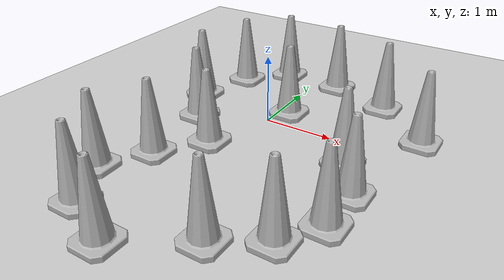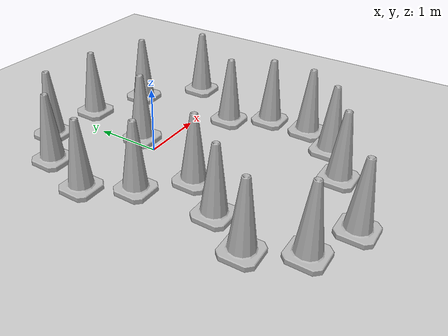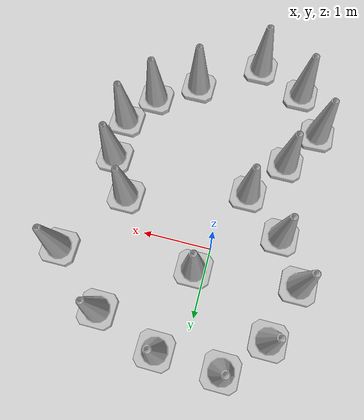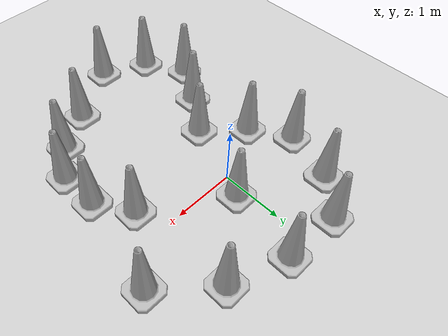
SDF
<sdf version="1.7">
 <world name="default">
  <light name="sun" type="directional">
   <pose>0 0 10 0 -0 0</pose>
   <diffuse>0.8 0.8 0.8 1</diffuse>
   <specular>0.2 0.2 0.2 1</specular>
   <attenuation>
    <range>1000</range>
    <constant>0.9</constant>
    <linear>0.01</linear>
    <quadratic>0.001</quadratic>
   </attenuation>
   <direction>-0.5 0.1 -0.9</direction>
   <spot><inner_angle>0</inner_angle><outer_angle>0</outer_angle><falloff>0</falloff></spot>
  </light>
  <model name="ground_plane">
   <static>1</static>
   <link name="link">
    <collision name="collision">
     <geometry><plane><normal>0 0 1</normal><size>100 100</size></plane></geometry>
     <surface>
      <contact><collide_bitmask>65535</collide_bitmask></contact>
      <friction><ode><mu>100</mu><mu2>50</mu2></ode></friction>
     </surface>
    </collision>
    <visual name="visual">
     <cast_shadows>0</cast_shadows>
     <geometry><plane><normal>0 0 1</normal><size>100 100</size></plane></geometry>
     <material>
      <script><uri>file://media/materials/scripts/gazebo.material</uri><name>Gazebo/Grey</name></script>
     </material>
    </visual>
   </link>
  </model>
  <gravity>0 0 -9.8</gravity>
  <magnetic_field>6e-06 2.3e-05 -4.2e-05</magnetic_field>
  <atmosphere type="adiabatic"/>
  <physics type="ode">
   <max_step_size>0.001</max_step_size>
   <real_time_factor>1</real_time_factor>
   <real_time_update_rate>1000</real_time_update_rate>
  </physics>
  <scene><ambient>0.4 0.4 0.4 1</ambient><background>0.7 0.7 0.7 1</background><shadows>1</shadows></scene>
  <spherical_coordinates>
   <surface_model>EARTH_WGS84</surface_model>
   <latitude_deg>0</latitude_deg>
   <longitude_deg>0</longitude_deg>
   <elevation>0</elevation>
   <heading_deg>0</heading_deg>
  </spherical_coordinates>
  <model name="Construction Cone">
   <link name="link">
    <collision name="collision">
     <geometry>
      <mesh><scale>10 10 10</scale><uri>model://construction_cone/meshes/construction_cone.dae</uri></mesh>
     </geometry>
    </collision>
    <visual name="visual">
     <geometry>
      <mesh><scale>10 10 10</scale><uri>model://construction_cone/meshes/construction_cone.dae</uri></mesh>
     </geometry>
    </visual>
    <inertial>
     <inertia><ixx>1</ixx><ixy>0</ixy><ixz>0</ixz><iyy>1</iyy><iyz>0</iyz><izz>1</izz></inertia>
     <mass>1</mass>
    </inertial>
   </link>
   <pose>-0.348892 -0.953407 -0 0 -1e-06 0</pose>
  </model>
  <model name="Construction Cone_clone">
   <link name="link">
    <collision name="collision">
     <geometry>
      <mesh><scale>10 10 10</scale><uri>model://construction_cone/meshes/construction_cone.dae</uri></mesh>
     </geometry>
    </collision>
    <visual name="visual">
     <geometry>
      <mesh><scale>10 10 10</scale><uri>model://construction_cone/meshes/construction_cone.dae</uri></mesh>
     </geometry>
    </visual>
    <inertial>
     <inertia><ixx>1</ixx><ixy>0</ixy><ixz>0</ixz><iyy>1</iyy><iyz>0</iyz><izz>1</izz></inertia>
     <mass>1</mass>
    </inertial>
   </link>
   <pose>1.78123 -1.69997 -0 0 0 -0.004098</pose>
  </model>
  <model name="Construction Cone_clone_clone">
   <link name="link">
    <collision name="collision">
     <geometry>
      <mesh><scale>10 10 10</scale><uri>model://construction_cone/meshes/construction_cone.dae</uri></mesh>
     </geometry>
    </collision>
    <visual name="visual">
     <geometry>
      <mesh><scale>10 10 10</scale><uri>model://construction_cone/meshes/construction_cone.dae</uri></mesh>
     </geometry>
    </visual>
    <inertial>
     <inertia><ixx>1</ixx><ixy>0</ixy><ixz>0</ixz><iyy>1</iyy><iyz>0</iyz><izz>1</izz></inertia>
     <mass>1</mass>
    </inertial>
   </link>
   <pose>0.822544 -2.58039 -0 1e-06 1e-06 0</pose>
  </model>
  <model name="Construction Cone_clone_clone_0">
   <link name="link">
    <collision name="collision">
     <geometry>
      <mesh><scale>10 10 10</scale><uri>model://construction_cone/meshes/construction_cone.dae</uri></mesh>
     </geometry>
    </collision>
    <visual name="visual">
     <geometry>
      <mesh><scale>10 10 10</scale><uri>model://construction_cone/meshes/construction_cone.dae</uri></mesh>
     </geometry>
    </visual>
    <inertial>
     <inertia><ixx>1</ixx><ixy>0</ixy><ixz>0</ixz><iyy>1</iyy><iyz>0</iyz><izz>1</izz></inertia>
     <mass>1</mass>
    </inertial>
   </link>
   <pose>0.161835 0.345818 0 -0 -0 -0</pose>
  </model>
  <model name="Construction Cone_clone_clone_1">
   <link name="link">
    <collision name="collision">
     <geometry>
      <mesh><scale>10 10 10</scale><uri>model://construction_cone/meshes/construction_cone.dae</uri></mesh>
     </geometry>
    </collision>
    <visual name="visual">
     <geometry>
      <mesh><scale>10 10 10</scale><uri>model://construction_cone/meshes/construction_cone.dae</uri></mesh>
     </geometry>
    </visual>
    <inertial>
     <inertia><ixx>1</ixx><ixy>0</ixy><ixz>0</ixz><iyy>1</iyy><iyz>0</iyz><izz>1</izz></inertia>
     <mass>1</mass>
    </inertial>
   </link>
   <pose>-0.804428 -1.56467 0 -0 -0 -0</pose>
  </model>
  <model name="Construction Cone_clone_clone_2">
   <link name="link">
    <collision name="collision">
     <geometry>
      <mesh><scale>10 10 10</scale><uri>model://construction_cone/meshes/construction_cone.dae</uri></mesh>
     </geometry>
    </collision>
    <visual name="visual">
     <geometry>
      <mesh><scale>10 10 10</scale><uri>model://construction_cone/meshes/construction_cone.dae</uri></mesh>
     </geometry>
    </visual>
    <inertial>
     <inertia><ixx>1</ixx><ixy>0</ixy><ixz>0</ixz><iyy>1</iyy><iyz>0</iyz><izz>1</izz></inertia>
     <mass>1</mass>
    </inertial>
   </link>
   <pose>-0.096346 -3.16498 -0 0 -1e-06 0</pose>
  </model>
  <model name="Construction Cone_clone_clone_3">
   <link name="link">
    <collision name="collision">
     <geometry>
      <mesh><scale>10 10 10</scale><uri>model://construction_cone/meshes/construction_cone.dae</uri></mesh>
     </geometry>
    </collision>
    <visual name="visual">
     <geometry>
      <mesh><scale>10 10 10</scale><uri>model://construction_cone/meshes/construction_cone.dae</uri></mesh>
     </geometry>
    </visual>
    <inertial>
     <inertia><ixx>1</ixx><ixy>0</ixy><ixz>0</ixz><iyy>1</iyy><iyz>0</iyz><izz>1</izz></inertia>
     <mass>1</mass>
    </inertial>
   </link>
   <pose>-0.821774 -2.83436 -0 0 -0 0</pose>
  </model>
  <model name="Construction Cone_clone_clone_4">
   <link name="link">
    <collision name="collision">
     <geometry>
      <mesh><scale>10 10 10</scale><uri>model://construction_cone/meshes/construction_cone.dae</uri></mesh>
     </geometry>
    </collision>
    <visual name="visual">
     <geometry>
      <mesh><scale>10 10 10</scale><uri>model://construction_cone/meshes/construction_cone.dae</uri></mesh>
     </geometry>
    </visual>
    <inertial>
     <inertia><ixx>1</ixx><ixy>0</ixy><ixz>0</ixz><iyy>1</iyy><iyz>0</iyz><izz>1</izz></inertia>
     <mass>1</mass>
    </inertial>
   </link>
   <pose>-1.19502 -2.18151 -0 -0 -1e-06 0.031817</pose>
  </model>
  <model name="Construction Cone_clone_clone_5">
   <link name="link">
    <collision name="collision">
     <geometry>
      <mesh><scale>10 10 10</scale><uri>model://construction_cone/meshes/construction_cone.dae</uri></mesh>
     </geometry>
    </collision>
    <visual name="visual">
     <geometry>
      <mesh><scale>10 10 10</scale><uri>model://construction_cone/meshes/construction_cone.dae</uri></mesh>
     </geometry>
    </visual>
    <inertial>
     <inertia><ixx>1</ixx><ixy>0</ixy><ixz>0</ixz><iyy>1</iyy><iyz>0</iyz><izz>1</izz></inertia>
     <mass>1</mass>
    </inertial>
   </link>
   <pose>1.43694 -2.19958 -0 0 0 -0.000385</pose>
  </model>
  <model name="Construction Cone_clone_clone_6">
   <link name="link">
    <collision name="collision">
     <geometry>
      <mesh><scale>10 10 10</scale><uri>model://construction_cone/meshes/construction_cone.dae</uri></mesh>
     </geometry>
    </collision>
    <visual name="visual">
     <geometry>
      <mesh><scale>10 10 10</scale><uri>model://construction_cone/meshes/construction_cone.dae</uri></mesh>
     </geometry>
    </visual>
    <inertial>
     <inertia><ixx>1</ixx><ixy>0</ixy><ixz>0</ixz><iyy>1</iyy><iyz>0</iyz><izz>1</izz></inertia>
     <mass>1</mass>
    </inertial>
   </link>
   <pose>1.7774 -1.04577 -1e-05 -0 -0 -0</pose>
  </model>
  <model name="Construction Cone_clone_clone_7">
   <link name="link">
    <collision name="collision">
     <geometry>
      <mesh><scale>10 10 10</scale><uri>model://construction_cone/meshes/construction_cone.dae</uri></mesh>
     </geometry>
    </collision>
    <visual name="visual">
     <geometry>
      <mesh><scale>10 10 10</scale><uri>model://construction_cone/meshes/construction_cone.dae</uri></mesh>
     </geometry>
    </visual>
    <inertial>
     <inertia><ixx>1</ixx><ixy>0</ixy><ixz>0</ixz><iyy>1</iyy><iyz>0</iyz><izz>1</izz></inertia>
     <mass>1</mass>
    </inertial>
   </link>
   <pose>1.41974 -0.479664 -1e-06 2e-06 2e-06 -0.005706</pose>
  </model>
  <model name="Construction Cone_clone_clone_8">
   <link name="link">
    <collision name="collision">
     <geometry>
      <mesh><scale>10 10 10</scale><uri>model://construction_cone/meshes/construction_cone.dae</uri></mesh>
     </geometry>
    </collision>
    <visual name="visual">
     <geometry>
      <mesh><scale>10 10 10</scale><uri>model://construction_cone/meshes/construction_cone.dae</uri></mesh>
     </geometry>
    </visual>
    <inertial>
     <inertia><ixx>1</ixx><ixy>0</ixy><ixz>0</ixz><iyy>1</iyy><iyz>0</iyz><izz>1</izz></inertia>
     <mass>1</mass>
    </inertial>
   </link>
   <pose>-0.941809 -0.41598 -0 0 -0 0</pose>
  </model>
  <model name="Construction Cone_clone_clone_9">
   <link name="link">
    <collision name="collision">
     <geometry>
      <mesh><scale>10 10 10</scale><uri>model://construction_cone/meshes/construction_cone.dae</uri></mesh>
     </geometry>
    </collision>
    <visual name="visual">
     <geometry>
      <mesh><scale>10 10 10</scale><uri>model://construction_cone/meshes/construction_cone.dae</uri></mesh>
     </geometry>
    </visual>
    <inertial>
     <inertia><ixx>1</ixx><ixy>0</ixy><ixz>0</ixz><iyy>1</iyy><iyz>0</iyz><izz>1</izz></inertia>
     <mass>1</mass>
    </inertial>
   </link>
   <pose>-1.3251 0.216526 -0 0 -0 0</pose>
  </model>
  <model name="Construction Cone_clone_clone_10">
   <link name="link">
    <collision name="collision">
     <geometry>
      <mesh><scale>10 10 10</scale><uri>model://construction_cone/meshes/construction_cone.dae</uri></mesh>
     </geometry>
    </collision>
    <visual name="visual">
     <geometry>
      <mesh><scale>10 10 10</scale><uri>model://construction_cone/meshes/construction_cone.dae</uri></mesh>
     </geometry>
    </visual>
    <inertial>
     <inertia><ixx>1</ixx><ixy>0</ixy><ixz>0</ixz><iyy>1</iyy><iyz>0</iyz><izz>1</izz></inertia>
     <mass>1</mass>
    </inertial>
   </link>
   <pose>-1.05627 1.04152 -0 0 -1e-06 0</pose>
  </model>
  <model name="Construction Cone_clone_clone_11">
   <link name="link">
    <collision name="collision">
     <geometry>
      <mesh><scale>10 10 10</scale><uri>model://construction_cone/meshes/construction_cone.dae</uri></mesh>
     </geometry>
    </collision>
    <visual name="visual">
     <geometry>
      <mesh><scale>10 10 10</scale><uri>model://construction_cone/meshes/construction_cone.dae</uri></mesh>
     </geometry>
    </visual>
    <inertial>
     <inertia><ixx>1</ixx><ixy>0</ixy><ixz>0</ixz><iyy>1</iyy><iyz>0</iyz><izz>1</izz></inertia>
     <mass>1</mass>
    </inertial>
   </link>
   <pose>-0.526616 1.58076 -8e-06 0 1e-06 0</pose>
  </model>
  <model name="Construction Cone_clone_clone_12">
   <link name="link">
    <collision name="collision">
     <geometry>
      <mesh><scale>10 10 10</scale><uri>model://construction_cone/meshes/construction_cone.dae</uri></mesh>
     </geometry>
    </collision>
    <visual name="visual">
     <geometry>
      <mesh><scale>10 10 10</scale><uri>model://construction_cone/meshes/construction_cone.dae</uri></mesh>
     </geometry>
    </visual>
    <inertial>
     <inertia><ixx>1</ixx><ixy>0</ixy><ixz>0</ixz><iyy>1</iyy><iyz>0</iyz><izz>1</izz></inertia>
     <mass>1</mass>
    </inertial>
   </link>
   <pose>0.395324 1.54071 -0 0 0 -0.007341</pose>
  </model>
  <model name="Construction Cone_clone_clone_13">
   <link name="link">
    <collision name="collision">
     <geometry>
      <mesh><scale>10 10 10</scale><uri>model://construction_cone/meshes/construction_cone.dae</uri></mesh>
     </geometry>
    </collision>
    <visual name="visual">
     <geometry>
      <mesh><scale>10 10 10</scale><uri>model://construction_cone/meshes/construction_cone.dae</uri></mesh>
     </geometry>
    </visual>
    <inertial>
     <inertia><ixx>1</ixx><ixy>0</ixy><ixz>0</ixz><iyy>1</iyy><iyz>0</iyz><izz>1</izz></inertia>
     <mass>1</mass>
    </inertial>
   </link>
   <pose>1.30999 1.21577 -0 -0 -1e-06 0.001734</pose>
  </model>
  <model name="Construction Cone_clone_clone_14">
   <link name="link">
    <collision name="collision">
     <geometry>
      <mesh><scale>10 10 10</scale><uri>model://construction_cone/meshes/construction_cone.dae</uri></mesh>
     </geometry>
    </collision>
    <visual name="visual">
     <geometry>
      <mesh><scale>10 10 10</scale><uri>model://construction_cone/meshes/construction_cone.dae</uri></mesh>
     </geometry>
    </visual>
    <inertial>
     <inertia><ixx>1</ixx><ixy>0</ixy><ixz>0</ixz><iyy>1</iyy><iyz>0</iyz><izz>1</izz></inertia>
     <mass>1</mass>
    </inertial>
   </link>
   <pose>2.11919 0.513088 -0 0 -1e-06 0.001181</pose>
  </model>
 </world>
</sdf>
